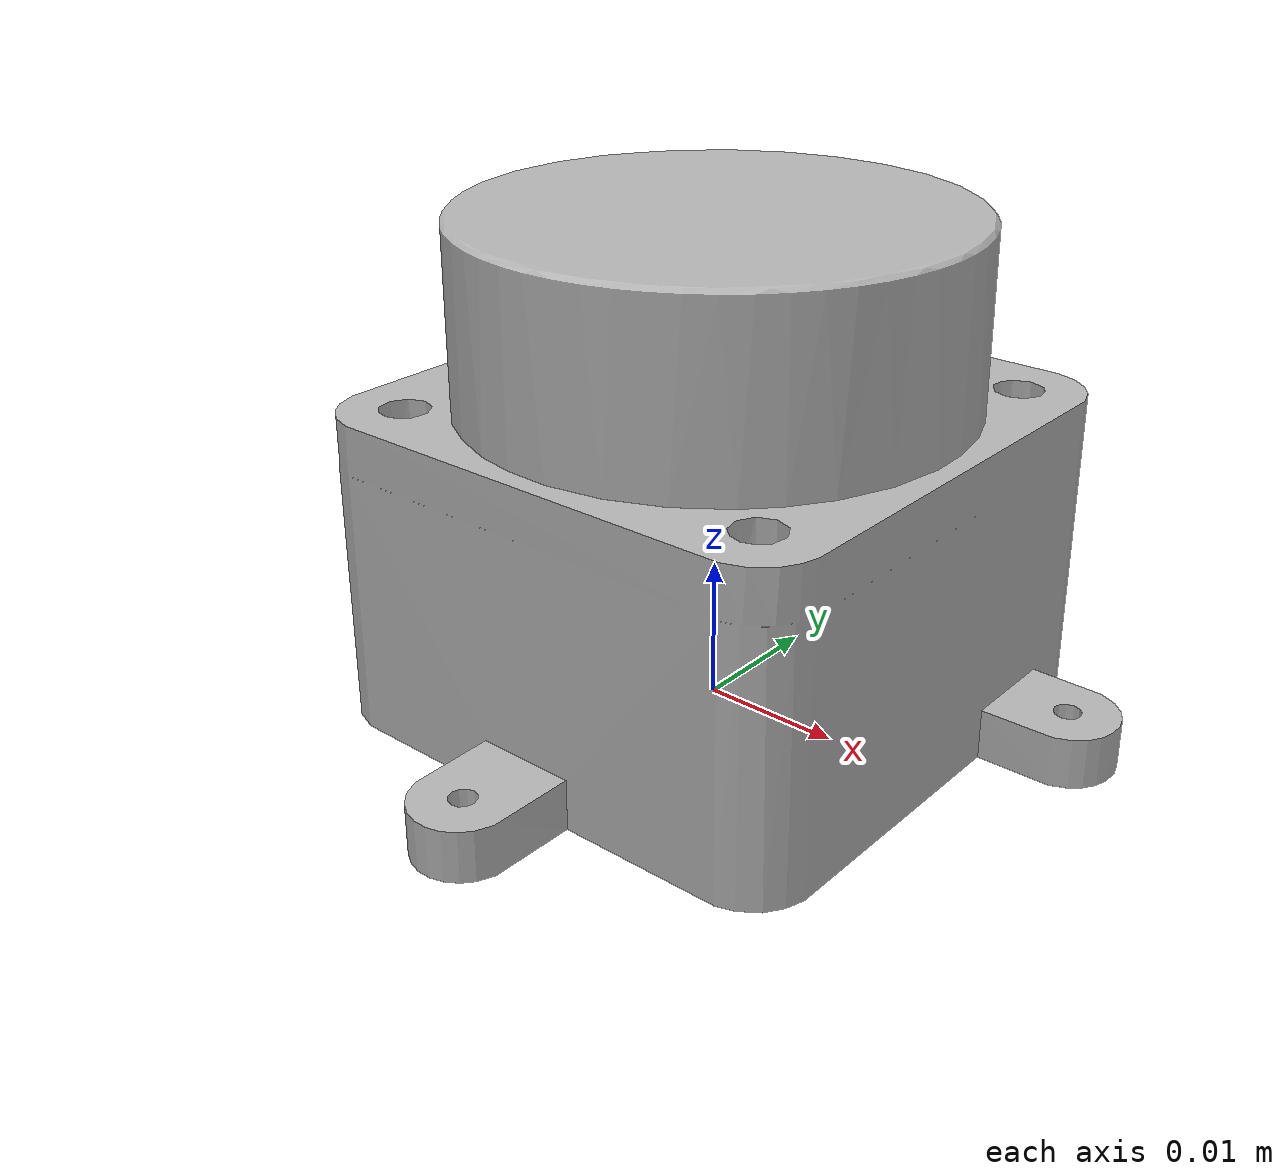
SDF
<?xml version="1.0" encoding="UTF-8"?>
<sdf version="1.9">
  <model name="ld19">
    <self_collide>false</self_collide>
    <static>false</static>
    <link name="ld19_link">
      <inertial>
        <mass>0.05</mass>
        <inertia>
          <ixx>0.00002</ixx>
          <iyy>0.00002</iyy>
          <izz>0.00002</izz>
          <ixy>0</ixy>
          <ixz>0</ixz>
          <iyz>0</iyz>
        </inertia>
      </inertial>
      <visual name="ld19_visual">
        <geometry>
          <mesh>
            <scale>1 1 1</scale>
            <uri>model://ld19/meshes/ld19.obj</uri>
          </mesh>
        </geometry>
      </visual>
      <sensor name="ld19" type="gpu_lidar">
        <pose>0 0 0 0 0 0</pose>
        <update_rate>10</update_rate>
        <ray>
          <scan>
            <horizontal>
              <samples>720</samples>
              <resolution>1</resolution>
              <min_angle>-3.1415926</min_angle>
              <max_angle>3.1415926</max_angle>
            </horizontal>
            <vertical>
              <samples>1</samples>
              <resolution>1</resolution>
              <min_angle>0</min_angle>
              <max_angle>0</max_angle>
            </vertical>
          </scan>
          <range>
            <min>0.02</min>
            <max>12.0</max>
            <resolution>0.001</resolution>
          </range>
        </ray>
        <always_on>1</always_on>
        <visualize>true</visualize>
      </sensor>
    </link>
  </model>
</sdf>
